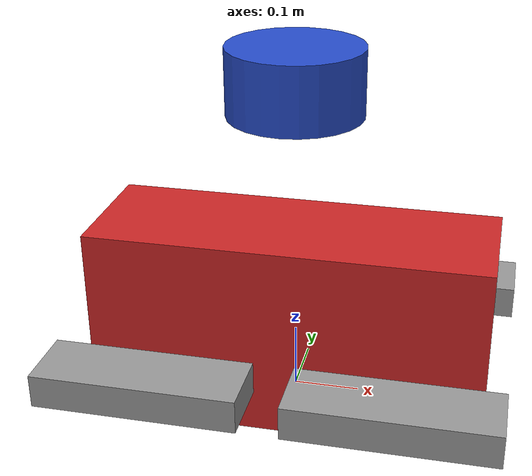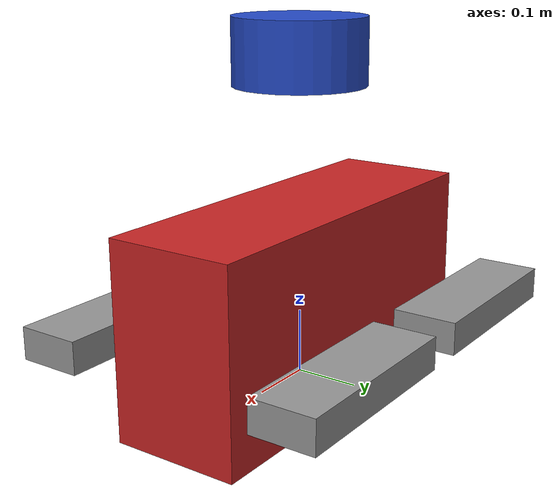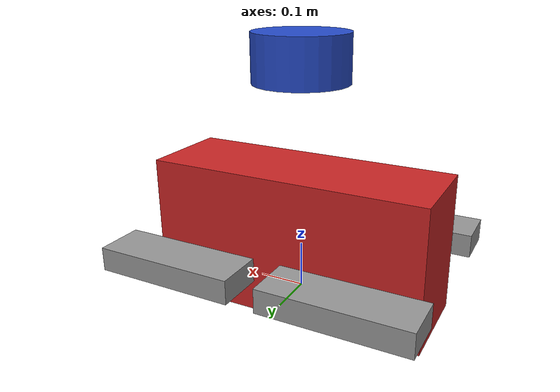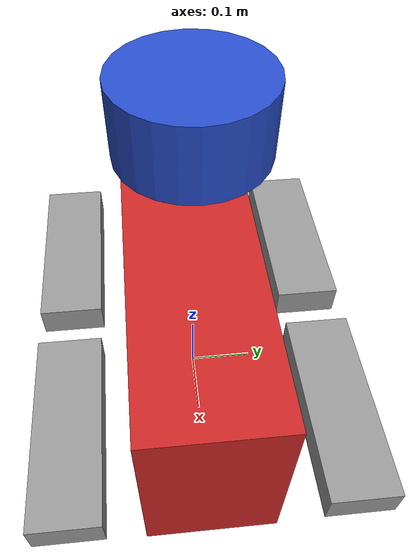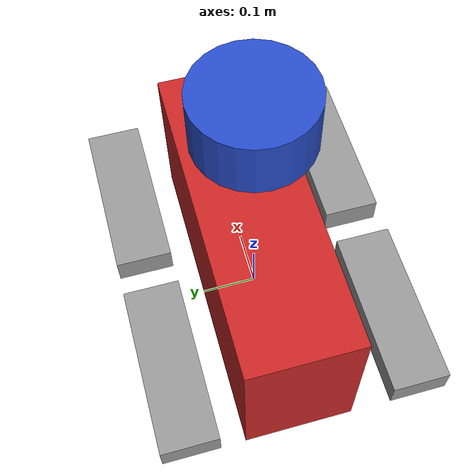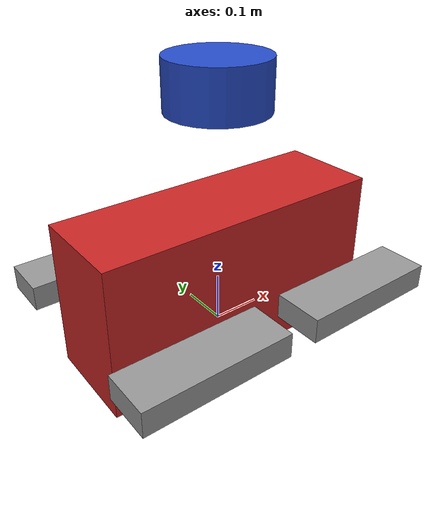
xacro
<?xml version="1.0"?>
<!-- Ember_Robot_Sim 1.0                                 -->
<!-- URDF DESCRIPTION OF THE EMBER BOT                   -->
<!-- Author: Maison Gulyas | (250) 258 - 1736            -->
<!-- This URDF will be four a quadropod Robot with a LiDAR
    attatched to the front, this LiDAR can be used in both
    2D and 3D modes.

    *Note xacros are always in SI*
-->
<!--
Orientation:
    x -> Forward
    y -> Left
    z -> Up
-->

<robot name="ember_bot" xmlns:xacro="http://www.ros.org/wiki/xacro">>

<!--            Geometry & Constants                     -->
<!--            MARK: G & C                              -->

<!-- Track Dimensions -->
<xacro:property name="tl" value="0.30"/>   <!-- track length (X) -->
<xacro:property name="tw" value="0.10"/>   <!-- track width  (Y) -->
<xacro:property name="th" value="0.05"/>   <!-- track height (Z) -->

<!-- Body Dimensions -->
<xacro:property name="bl" value="0.60"/>   <!-- body length (X) -->
<xacro:property name="bw" value="0.30"/>   <!-- body width  (Y) -->
<xacro:property name="bh" value="0.20"/>   <!-- body height (Z) -->

<!-- LiDAR Dimensions -->
<xacro:property name="lr" value="0.15"/> <!-- LiDAR Radius -->
<xacro:property name="ll" value="0.1"/>  <!-- LiDAR Length -->

<!--            Location Setup                           -->
<!--            MARK: LOCO                               -->

<!-- Arm / pivot geometry -->
<xacro:property name="pivot_margin" value="0.02"/>  <!-- keep pivot inside body end -->
<xacro:property name="xp" value="0.10"/>            <!-- track COM -> pivot along +X -->

<!-- Pivot locations on the body (X axis) -->
<xacro:property name="pivot_x_front" value="${ bl/2 - pivot_margin }"/>
<xacro:property name="pivot_x_rear"  value="${-(bl/2 - pivot_margin)}"/>

<!-- Track COM X positions (because track link origin is COM) -->
<xacro:property name="track_com_x_front" value="${ pivot_x_front - xp }"/>
<xacro:property name="track_com_x_rear"  value="${ pivot_x_rear  - xp }"/>

<!-- Left/right track COM Y placement -->
<xacro:property name="track_com_y" value="${ bw/2 + tw/2 }"/>

<!-- Body Z placement above ground (simple + stable version) -->
<xacro:property name="body_z_from_ground" value="${ th/2 + bh/2 }"/>

<!--                  Mass & Inertia                     -->
<!--                  MARK: M & I                        -->

<!-- Densities -->
<xacro:property name="body_density" value="2710.0"/>  <!-- body -->
<xacro:property name="track_density" value="2710.0"/>  <!-- track -->\

 <!-- LiDAR density is not set as it would affect the spin of
 the LiDAR if we were to set it. That being said the spin is
 not simulated so we do not need to worry about it.-->

<!-- Masses -->
<xacro:property name="body_mass" value="${body_density*bl*bh*bw}"/>
<xacro:property name="track_mass" value="${track_density*tl*th*tw}"/>

<!-- Body inertia -->
<xacro:property name="Ix_body" value="${(1.0/12.0)*body_mass*(bh*bh + bw*bw)}"/>
<xacro:property name="Iy_body" value="${(1.0/12.0)*body_mass*(bl*bl + bh*bh)}"/>
<xacro:property name="Iz_body" value="${(1.0/12.0)*body_mass*(bl*bl + bw*bw)}"/>

<!-- Track inertia -->
<xacro:property name="Ix_track" value="${(1.0/12.0)*track_mass*(tw*tw + th*th)}"/>
<xacro:property name="Iy_track" value="${(1.0/12.0)*track_mass*(tl*tl + th*th)}"/>
<xacro:property name="Iz_track" value="${(1.0/12.0)*track_mass*(tl*tl + tw*tw)}"/>

<!-- Inertia macros -->
<xacro:macro name="inertia_body">
    <inertial>
        <mass value="${body_mass}"/>
        <inertia ixx="${Ix_body}" ixy="0" ixz="0" iyy="${Iy_body}" iyz="0" izz="${Iz_body}"/>
    </inertial>
</xacro:macro>

<xacro:macro name="inertia_track">
    <inertial>
        <mass value="${track_mass}"/>
        <inertia ixx="${Ix_track}" ixy="0" ixz="0" iyy="${Iy_track}" iyz="0" izz="${Iz_track}"/>
    </inertial>
</xacro:macro>

<!--            Include Additional Files              -->
<!--            MARK: File Incl.                      -->

<xacro:include filename="$(find ember_robot)/model/ember.gazebo"/>

<!-- MARK: LINKS, JOINTS HERE                         -->

<!-- START: Fictitious Link of the Robot              -->

<link name="base_footprint"/>

<joint name="body_link_joint" type="fixed">
    <parent link="base_footprint"/>
    <child link="body_link"/>
</joint>

<!-- END: Fictitious Link of the Robot                -->

<!-- START: Body Link of the Robot                    -->

<link name="body_link">
    <visual>
        <geometry>
            <box size="${bl} ${bh} ${bw}"/>
        </geometry>
        <origin rpy="0 0 0" xyz="0 0 ${body_z_from_ground}"/>
    </visual>

    <collision>
        <geometry>
            <box size="${bl} ${bh} ${bw}"/>
        </geometry>
        <origin rpy="0 0 0" xyz="0 0 ${body_z_from_ground}"/>
    </collision>

    <xacro:inertia_body/>
</link>

<!-- END: Body Link of the Robot                      -->

<!-- START: Front Left Track of the Robot + Joint      -->

<joint name="front_left_track_joint" type="continuous">
    <parent link="body_link"/>
    <child link="flt_link"/>
    <origin xyz="${pivot_x_front} ${track_com_y} ${tw}" rpy="0 0 0"/>
    <axis xyz="0 1 0"/>
</joint>

<link name="flt_link">
    <visual>
        <origin xyz="${-xp} 0 0" rpy="0 0 0"/>
        <geometry><box size="${tl} ${tw} ${th}"/></geometry>
    </visual>

    <collision>
        <origin xyz="${-xp} 0 0" rpy="0 0 0"/>
        <geometry><box size="${tl} ${tw} ${th}"/></geometry>
    </collision>

    <xacro:inertia_track/>
</link>

<!-- END: Front Left Track                             -->

<!-- START: Front Right Track of the Robot + Joint     -->

<joint name="front_right_track_joint" type="continuous">
    <parent link="body_link"/>
    <child link="frt_link"/>
    <origin xyz="${pivot_x_front} ${-track_com_y} ${tw}" rpy="0 0 0"/>
    <axis xyz="0 1 0"/>
</joint>

<link name="frt_link">
    <visual>
        <origin xyz="${-xp} 0 0" rpy="0 0 0"/>
        <geometry><box size="${tl} ${tw} ${th}"/></geometry>
    </visual>

    <collision>
        <origin xyz="${-xp} 0 0" rpy="0 0 0"/>
        <geometry><box size="${tl} ${tw} ${th}"/></geometry>
    </collision>

    <xacro:inertia_track/>
</link>

<!-- END: Front Right Track                            -->

<!-- START: Back Left Track of the Robot + Joint       -->

<joint name="back_left_track_joint" type="continuous">
    <parent link="body_link"/>
    <child link="blt_link"/>
    <origin xyz="${-pivot_x_front} ${track_com_y} ${tw}" rpy="0 0 0"/>
    <axis xyz="0 1 0"/>
</joint>

<link name="blt_link">
    <visual>
        <origin xyz="${xp} 0 0" rpy="0 0 0"/>
        <geometry><box size="${tl} ${tw} ${th}"/></geometry>
    </visual>

    <collision>
        <origin xyz="${xp} 0 0" rpy="0 0 0"/>
        <geometry><box size="${tl} ${tw} ${th}"/></geometry>
    </collision>

    <xacro:inertia_track/>
</link>

<!-- END: Back Left Track                              -->

<!-- START: Back Right Track of the Robot + Joint       -->

<joint name="back_right_track_joint" type="continuous">
    <parent link="body_link"/>
    <child link="brt_link"/>
    <origin xyz="${-pivot_x_front} ${-track_com_y} ${tw}" rpy="0 0 0"/>
    <axis xyz="0 1 0"/>
</joint>

<link name="brt_link">
    <visual>
        <origin xyz="${xp} 0 0" rpy="0 0 0"/>
        <geometry><box size="${tl} ${tw} ${th}"/></geometry>
    </visual>

    <collision>
        <origin xyz="${xp} 0 0" rpy="0 0 0"/>
        <geometry><box size="${tl} ${tw} ${th}"/></geometry>
    </collision>

    <xacro:inertia_track/>
</link>

<!-- END: Back Right Track                              -->

<!-- START: LiDAR                                       -->

<joint name="lidar_joint" type="fixed">
    <parent link="body_link"/>
    <child link="lidar_link"/>
    <origin xyz="0.0 0 0.5" rpy="0 0 0"/>
</joint>

<link name="lidar_link">
    <visual>
        <origin xyz="0 0 0" rpy="0 0 0"/>
        <geometry><cylinder radius="0.1" length="0.1"/></geometry>
    </visual>

    <collision>
        <origin xyz="0 0 0" rpy="0 0 0"/>
        <geometry><cylinder radius="0.1" length="0.1"/></geometry>
    </collision>

    <!-- Minimal but valid inertia -->
    <inertial>
        <mass value="1e-6"/>
        <inertia ixx="1e-6" ixy="0" ixz="0" iyy="1e-6" iyz="0" izz="1e-6"/>
    </inertial>
</link>

<!-- END: LiDAR                                         -->

</robot>
